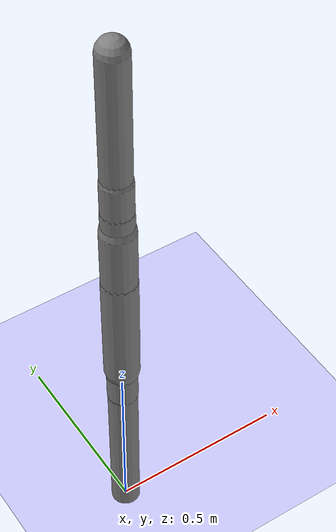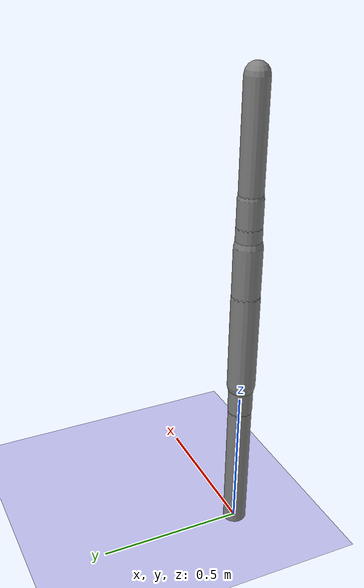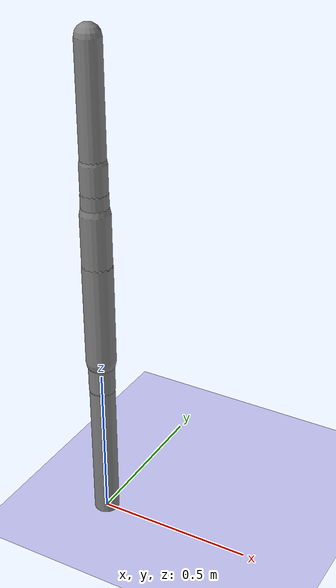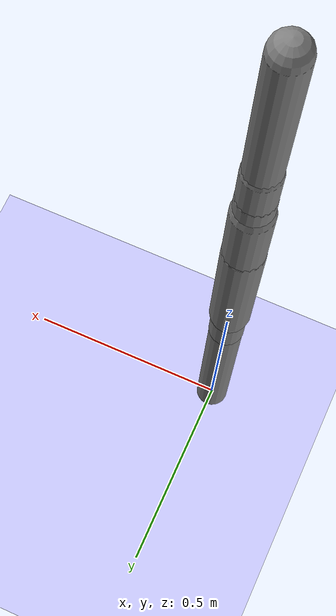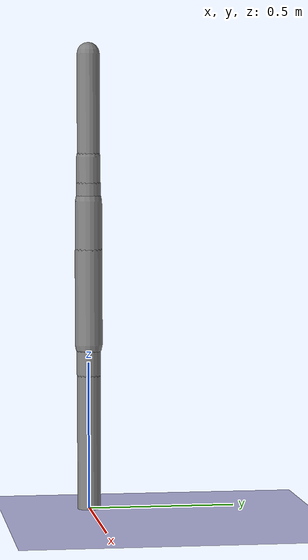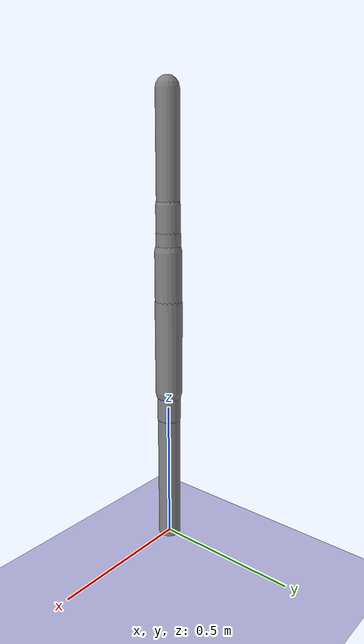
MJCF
<?xml version='1.0' encoding='UTF-8'?>
<mujoco model="robot_model">
  <worldbody>
    <light name="light" pos="0 -3 10" dir="0 0.5 -1" diffuse=".8 .8 .8" specular="0.1 0.1 0.1"/>
    <geom name="floor" type="plane" size="10.0 10.0 0.1" pos="0 0 0" rgba="0.8 0.8 1 1" contype="2" conaffinity="1"/>
    <body name="limb0" pos="0 0 0">
      <geom type="capsule" fromto="0 0 0 0 0 0.6" size="0.04" density="400.0" contype="1" conaffinity="2"/>
      <site type="sphere" size="0.01" name="limb0_site0" pos="0 0 0.4224897400484396"/>
      <freejoint name="limb0_root"/>
      <body name="limb1" pos="0 0 0.4224897400484396">
        <geom type="capsule" fromto="0 0 0 0 0 0.22374799158173964" size="0.029119176085318315" density="452.1334187822219" contype="1" conaffinity="2"/>
        <site type="sphere" size="0.01" name="limb1_site0" pos="0 0 0.13959699440114137"/>
        <site type="sphere" size="0.01" name="limb1_site1" pos="0 0 0.039350103148185524"/>
        <site type="sphere" size="0.01" name="limb1_site2" pos="0 0 0.19102740956826053"/>
        <body name="limb2" pos="0 0 0.13959699440114137">
          <geom type="capsule" fromto="0 0 0 0 0 0.32331157919001374" size="0.04703069767789839" density="709.8359320414992" contype="1" conaffinity="2"/>
          <site type="sphere" size="0.01" name="limb2_site0" pos="0 0 0.042862313993597696"/>
          <body name="limb3" pos="0 0 0.042862313993597696">
            <geom type="capsule" fromto="0 0 0 0 0 0.3159768240312215" size="0.04398226962321314" density="874.9200254675034" contype="1" conaffinity="2"/>
            <joint name="joint_limb2_limb3_0" type="hinge" axis="0 0 1" range="-118.11198317294439 118.11198317294439" damping="5.0"/>
          </body>
          <joint name="joint_limb1_limb2_0" type="hinge" axis="0 1 0" range="-82.7424809592319 82.7424809592319" damping="5.0"/>
        </body>
        <body name="limb4" pos="0 0 0.039350103148185524">
          <geom type="capsule" fromto="0 0 0 0 0 0.31506302920139795" size="0.04118448157082622" density="1024.7729175917539" contype="1" conaffinity="2"/>
          <site type="sphere" size="0.01" name="limb4_site0" pos="0 0 0.31490592373299237"/>
          <body name="limb5" pos="0 0 0.31490592373299237">
            <geom type="capsule" fromto="0 0 0 0 0 0.4284404509083106" size="0.04105785924953809" density="546.2432663795936" contype="1" conaffinity="2"/>
            <joint name="joint_limb4_limb5_0" type="hinge" axis="0 1 0" range="-97.60316524447805 97.60316524447805" damping="5.0"/>
          </body>
          <joint name="joint_limb1_limb4_0" type="hinge" axis="1 0 0" range="-76.57739072162552 76.57739072162552" damping="5.0"/>
        </body>
        <body name="limb6" pos="0 0 0.19102740956826053">
          <geom type="capsule" fromto="0 0 0 0 0 0.5" size="0.04176390226586898" density="1099.8564352385924" contype="1" conaffinity="2"/>
          <site type="sphere" size="0.01" name="limb6_site0" pos="0 0 0.24100166778236712"/>
          <site type="sphere" size="0.01" name="limb6_site1" pos="0 0 0.44076882258336086"/>
          <site type="sphere" size="0.01" name="limb6_site2" pos="0 0 0.25203444162184496"/>
          <body name="limb7" pos="0 0 0.24100166778236712">
            <geom type="capsule" fromto="0 0 0 0 0 0.19942307054689806" size="0.04609395862756084" density="1147.4288306062897" contype="1" conaffinity="2"/>
            <joint name="joint_limb6_limb7_0" type="hinge" axis="0 0 1" range="-97.3556228309299 97.3556228309299" damping="5.0"/>
          </body>
          <body name="limb8" pos="0 0 0.44076882258336086">
            <geom type="capsule" fromto="0 0 0 0 0 0.5" size="0.0387409528111207" density="1014.096068389789" contype="1" conaffinity="2"/>
            <joint name="joint_limb6_limb8_0" type="hinge" axis="0 1 0" range="-112.78288694266163 112.78288694266163" damping="5.0"/>
          </body>
          <body name="limb9" pos="0 0 0.25203444162184496">
            <geom type="capsule" fromto="0 0 0 0 0 0.37166349185855707" size="0.03471472421033268" density="1181.8553192277445" contype="1" conaffinity="2"/>
            <joint name="joint_limb6_limb9_0" type="hinge" axis="0 0 1" range="-106.17964630106378 106.17964630106378" damping="5.0"/>
          </body>
          <joint name="joint_limb1_limb6_0" type="hinge" axis="0 1 0" range="-106.84257521657214 106.84257521657214" damping="5.0"/>
        </body>
        <joint name="joint_limb0_limb1_0" type="hinge" axis="0 1 0" range="-102.24210496044591 102.24210496044591" damping="5.0"/>
      </body>
    </body>
  </worldbody>
  <actuator>
    <position name="position_actuator_joint_limb0_limb1_0" joint="joint_limb0_limb1_0" gear="1.1777902197768442" inheritrange="1" kp="10.0"/>
    <position name="position_actuator_joint_limb1_limb2_0" joint="joint_limb1_limb2_0" gear="0.7360723872815542" inheritrange="1" kp="10.0"/>
    <position name="position_actuator_joint_limb2_limb3_0" joint="joint_limb2_limb3_0" gear="1.2993474610322076" inheritrange="1" kp="10.0"/>
    <position name="position_actuator_joint_limb1_limb4_0" joint="joint_limb1_limb4_0" gear="1.9786544527946286" inheritrange="1" kp="10.0"/>
    <position name="position_actuator_joint_limb4_limb5_0" joint="joint_limb4_limb5_0" gear="1.7459471619076385" inheritrange="1" kp="10.0"/>
    <position name="position_actuator_joint_limb1_limb6_0" joint="joint_limb1_limb6_0" gear="1.4252429185165156" inheritrange="1" kp="10.0"/>
    <position name="position_actuator_joint_limb6_limb7_0" joint="joint_limb6_limb7_0" gear="1.2514069354827302" inheritrange="1" kp="10.0"/>
    <position name="position_actuator_joint_limb6_limb8_0" joint="joint_limb6_limb8_0" gear="1.560711091863385" inheritrange="1" kp="10.0"/>
    <position name="position_actuator_joint_limb6_limb9_0" joint="joint_limb6_limb9_0" gear="0.7597488265685853" inheritrange="1" kp="10.0"/>
  </actuator>
</mujoco>
